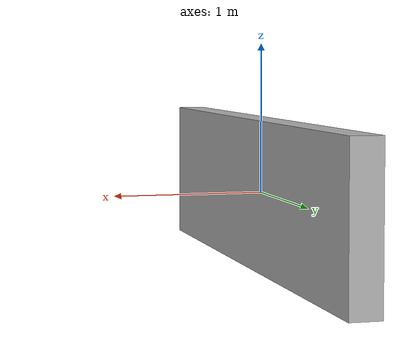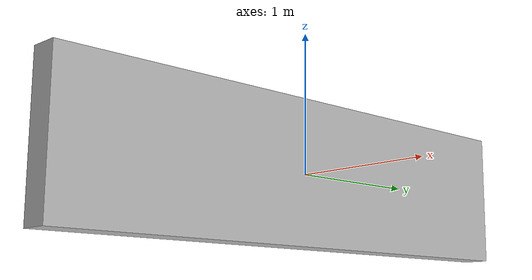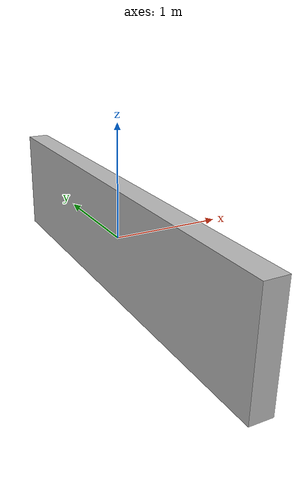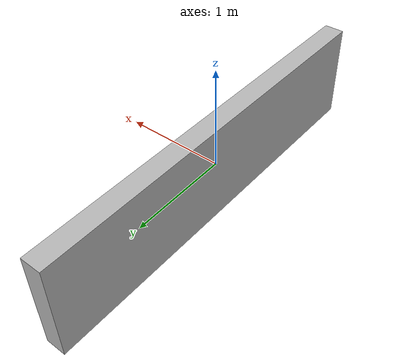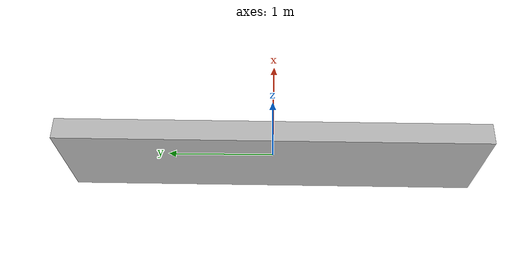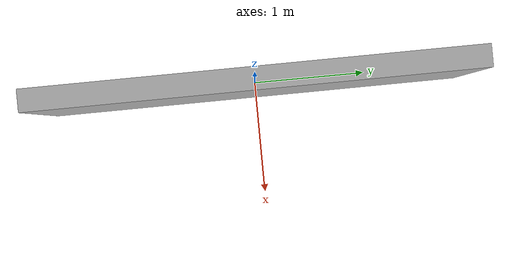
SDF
<?xml version='1.0'?>
<sdf version='1.6'>
  <model name='room_5_wall_left'>
    <static>true</static>
    <link name='link'>
      <collision name='collision'>
        <pose>0 0 0 0 0 0</pose>
        <geometry>
          <box>
            <size>0.2 3.99 1.0</size>
          </box>
        </geometry>
      </collision>
      <visual name='visual'>
        <pose>0 0 0 0 0 0</pose>
        <geometry>
          <box>
            <size>0.2 3.99 1.0</size>
          </box>
        </geometry>
      </visual>
    </link>
  </model>
</sdf>
